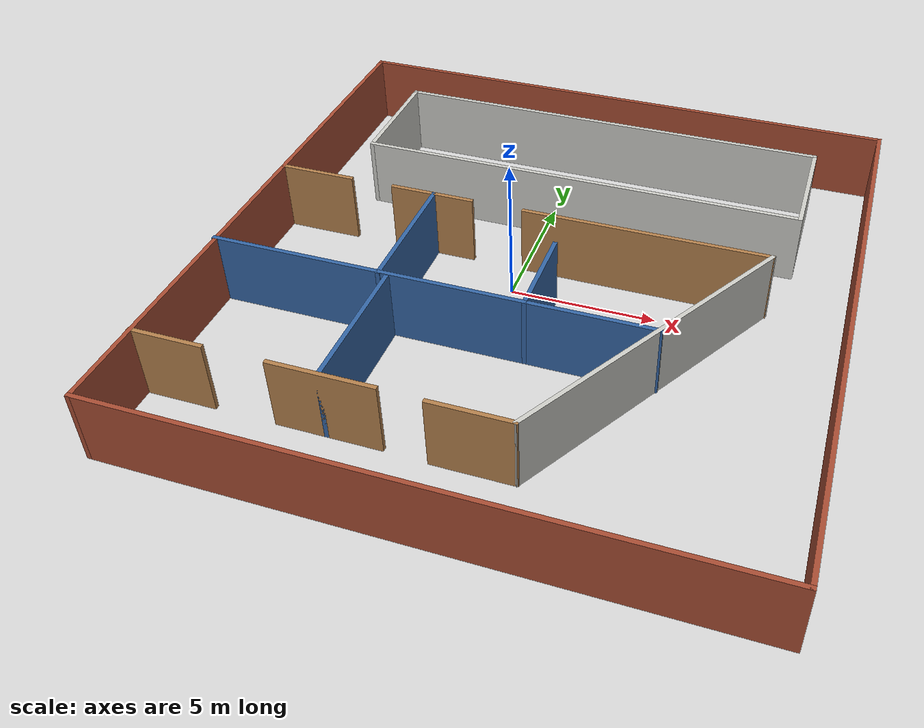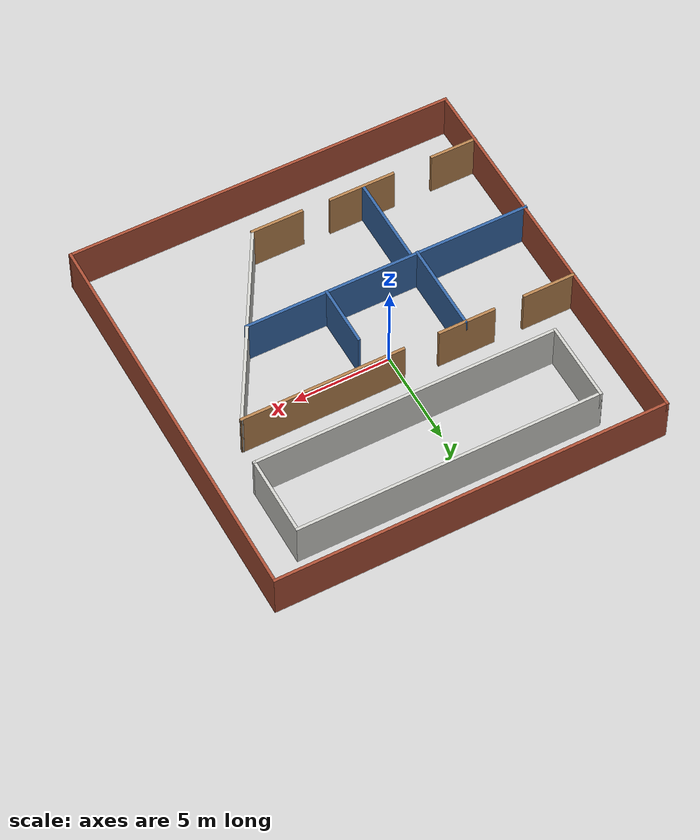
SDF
<?xml version='1.0'?>
<sdf version='1.6'>
  <model name='hostelM1'>
    <pose frame=''>0.983517 -0.567657 0 0 -0 0</pose>
    <link name='Wall_10'>
      <collision name='Wall_10_Collision'>
        <geometry>
          <box>
            <size>4.25 0.15 2.5</size>
          </box>
        </geometry>
        <pose frame=''>0 0 1.25 0 -0 0</pose>
      </collision>
      <visual name='Wall_10_Visual'>
        <pose frame=''>0 0 1.25 0 -0 0</pose>
        <geometry>
          <box>
            <size>4.25 0.15 2.5</size>
          </box>
        </geometry>
        <material>
          <script>
            <uri>file://media/materials/scripts/gazebo.material</uri>
            <name>Gazebo/CeilingTiled</name>
          </script>
          <ambient>1 1 1 1</ambient>
        </material>
        <meta>
          <layer>0</layer>
        </meta>
      </visual>
      <pose frame=''>7.95036 6.33647 0 0 -0 -1.5708</pose>
    </link>
    <link name='Wall_11'>
      <collision name='Wall_11_Collision'>
        <geometry>
          <box>
            <size>15.75 0.15 2.5</size>
          </box>
        </geometry>
        <pose frame=''>0 0 1.25 0 -0 0</pose>
      </collision>
      <visual name='Wall_11_Visual'>
        <pose frame=''>0 0 1.25 0 -0 0</pose>
        <geometry>
          <box>
            <size>15.75 0.15 2.5</size>
          </box>
        </geometry>
        <material>
          <script>
            <uri>file://media/materials/scripts/gazebo.material</uri>
            <name>Gazebo/CeilingTiled</name>
          </script>
          <ambient>1 1 1 1</ambient>
        </material>
        <meta>
          <layer>0</layer>
        </meta>
      </visual>
      <pose frame=''>0.15036 4.28647 0 0 -0 3.14159</pose>
    </link>
    <link name='Wall_12'>
      <collision name='Wall_12_Collision'>
        <geometry>
          <box>
            <size>4.25 0.15 2.5</size>
          </box>
        </geometry>
        <pose frame=''>0 0 1.25 0 -0 0</pose>
      </collision>
      <visual name='Wall_12_Visual'>
        <pose frame=''>0 0 1.25 0 -0 0</pose>
        <geometry>
          <box>
            <size>4.25 0.15 2.5</size>
          </box>
        </geometry>
        <material>
          <script>
            <uri>file://media/materials/scripts/gazebo.material</uri>
            <name>Gazebo/CeilingTiled</name>
          </script>
          <ambient>1 1 1 1</ambient>
        </material>
        <meta>
          <layer>0</layer>
        </meta>
      </visual>
      <pose frame=''>-7.64964 6.33647 0 0 -0 1.5708</pose>
    </link>
    <link name='Wall_14'>
      <collision name='Wall_14_Collision'>
        <geometry>
          <box>
            <size>2.75 0.15 2.5</size>
          </box>
        </geometry>
        <pose frame=''>0 0 1.25 0 -0 0</pose>
      </collision>
      <visual name='Wall_14_Visual'>
        <pose frame=''>0 0 1.25 0 -0 0</pose>
        <geometry>
          <box>
            <size>2.75 0.15 2.5</size>
          </box>
        </geometry>
        <material>
          <script>
            <uri>file://media/materials/scripts/gazebo.material</uri>
            <name>Gazebo/Wood</name>
          </script>
          <ambient>0.203922 0.396078 0.643137 1</ambient>
        </material>
        <meta>
          <layer>0</layer>
        </meta>
      </visual>
      <pose frame=''>-8.69606 1.91358 0 0 -0 0</pose>
    </link>
    <link name='Wall_17'>
      <collision name='Wall_17_Collision'>
        <geometry>
          <box>
            <size>3 0.15 2.5</size>
          </box>
        </geometry>
        <pose frame=''>0 0 1.25 0 -0 0</pose>
      </collision>
      <visual name='Wall_17_Visual'>
        <pose frame=''>0 0 1.25 0 -0 0</pose>
        <geometry>
          <box>
            <size>3 0.15 2.5</size>
          </box>
        </geometry>
        <material>
          <script>
            <uri>file://media/materials/scripts/gazebo.material</uri>
            <name>Gazebo/Wood</name>
          </script>
          <ambient>0.203922 0.396078 0.643137 1</ambient>
        </material>
        <meta>
          <layer>0</layer>
        </meta>
      </visual>
      <pose frame=''>-4.32323 1.91358 0 0 -0 0</pose>
    </link>
    <link name='Wall_20'>
      <collision name='Wall_20_Collision'>
        <geometry>
          <box>
            <size>8.5 0.15 2.5</size>
          </box>
        </geometry>
        <pose frame=''>0 0 1.25 0 -0 0</pose>
      </collision>
      <visual name='Wall_20_Visual'>
        <pose frame=''>0 0 1.25 0 -0 0</pose>
        <geometry>
          <box>
            <size>8.5 0.15 2.5</size>
          </box>
        </geometry>
        <material>
          <script>
            <uri>file://media/materials/scripts/gazebo.material</uri>
            <name>Gazebo/Wood</name>
          </script>
          <ambient>0.203922 0.396078 0.643137 1</ambient>
        </material>
        <meta>
          <layer>0</layer>
        </meta>
      </visual>
      <pose frame=''>3.20053 1.91358 0 0 -0 0</pose>
    </link>
    <link name='Wall_21'>
      <collision name='Wall_21_Collision'>
        <geometry>
          <box>
            <size>11 0.15 2.5</size>
          </box>
        </geometry>
        <pose frame=''>0 0 1.25 0 -0 0</pose>
      </collision>
      <visual name='Wall_21_Visual'>
        <pose frame=''>0 0 1.25 0 -0 0</pose>
        <geometry>
          <box>
            <size>11 0.15 2.5</size>
          </box>
        </geometry>
        <material>
          <script>
            <uri>file://media/materials/scripts/gazebo.material</uri>
            <name>Gazebo/CeilingTiled</name>
          </script>
          <ambient>1 1 1 1</ambient>
        </material>
        <meta>
          <layer>0</layer>
        </meta>
      </visual>
      <pose frame=''>4.66303 -2.78461 0 0 -0 -2.0944</pose>
    </link>
    <link name='Wall_22'>
      <collision name='Wall_22_Collision'>
        <geometry>
          <box>
            <size>2.75 0.15 2.5</size>
          </box>
        </geometry>
        <pose frame=''>0 0 1.25 0 -0 0</pose>
      </collision>
      <visual name='Wall_22_Visual'>
        <pose frame=''>0 0 1.25 0 -0 0</pose>
        <geometry>
          <box>
            <size>2.75 0.15 2.5</size>
          </box>
        </geometry>
        <material>
          <script>
            <uri>file://media/materials/scripts/gazebo.material</uri>
            <name>Gazebo/Wood</name>
          </script>
          <ambient>1 1 1 1</ambient>
        </material>
        <meta>
          <layer>0</layer>
        </meta>
      </visual>
      <pose frame=''>0.650531 -7.4828 0 0 -0 3.14159</pose>
    </link>
    <link name='Wall_24'>
      <collision name='Wall_24_Collision'>
        <geometry>
          <box>
            <size>3.5 0.15 2.5</size>
          </box>
        </geometry>
        <pose frame=''>0 0 1.25 0 -0 0</pose>
      </collision>
      <visual name='Wall_24_Visual'>
        <pose frame=''>0 0 1.25 0 -0 0</pose>
        <geometry>
          <box>
            <size>3.5 0.15 2.5</size>
          </box>
        </geometry>
        <material>
          <script>
            <uri>file://media/materials/scripts/gazebo.material</uri>
            <name>Gazebo/Wood</name>
          </script>
          <ambient>1 1 1 1</ambient>
        </material>
        <meta>
          <layer>0</layer>
        </meta>
      </visual>
      <pose frame=''>-3.86314 -7.43166 0 0 -0 3.14159</pose>
    </link>
    <link name='Wall_26'>
      <collision name='Wall_26_Collision'>
        <geometry>
          <box>
            <size>2.5 0.15 2.5</size>
          </box>
        </geometry>
        <pose frame=''>0 0 1.25 0 -0 0</pose>
      </collision>
      <visual name='Wall_26_Visual'>
        <pose frame=''>0 0 1.25 0 -0 0</pose>
        <geometry>
          <box>
            <size>2.5 0.15 2.5</size>
          </box>
        </geometry>
        <material>
          <script>
            <uri>file://media/materials/scripts/gazebo.material</uri>
            <name>Gazebo/Wood</name>
          </script>
          <ambient>1 1 1 1</ambient>
        </material>
        <meta>
          <layer>0</layer>
        </meta>
      </visual>
      <pose frame=''>-8.8651 -7.43166 0 0 -0 3.14159</pose>
    </link>
    <link name='Wall_28'>
      <collision name='Wall_28_Collision'>
        <geometry>
          <box>
            <size>15 0.15 2.5</size>
          </box>
        </geometry>
        <pose frame=''>0 0 1.25 0 -0 0</pose>
      </collision>
      <visual name='Wall_28_Visual'>
        <pose frame=''>0 0 1.25 0 -0 0</pose>
        <geometry>
          <box>
            <size>15 0.15 2.5</size>
          </box>
        </geometry>
        <material>
          <script>
            <uri>file://media/materials/scripts/gazebo.material</uri>
            <name>Gazebo/Grey</name>
          </script>
          <ambient>0.203922 0.396078 0.643137 1</ambient>
        </material>
        <meta>
          <layer>0</layer>
        </meta>
      </visual>
      <pose frame=''>-2.65197 -2.6579 0 0 -0 0</pose>
    </link>
    <link name='Wall_32'>
      <collision name='Wall_32_Collision'>
        <geometry>
          <box>
            <size>4.75 0.15 2.5</size>
          </box>
        </geometry>
        <pose frame=''>0 0 1.25 0 -0 0</pose>
      </collision>
      <visual name='Wall_32_Visual'>
        <pose frame=''>0 0 1.25 0 -0 0</pose>
        <geometry>
          <box>
            <size>4.75 0.15 2.5</size>
          </box>
        </geometry>
        <material>
          <script>
            <uri>file://media/materials/scripts/gazebo.material</uri>
            <name>Gazebo/Grey</name>
          </script>
          <ambient>0.203922 0.396078 0.643137 1</ambient>
        </material>
        <meta>
          <layer>0</layer>
        </meta>
      </visual>
      <pose frame=''>-4.25137 -0.386422 0 0 -0 -1.5708</pose>
    </link>
    <link name='Wall_34'>
      <collision name='Wall_34_Collision'>
        <geometry>
          <box>
            <size>4.75 0.15 2.5</size>
          </box>
        </geometry>
        <pose frame=''>0 0 1.25 0 -0 0</pose>
      </collision>
      <visual name='Wall_34_Visual'>
        <pose frame=''>0 0 1.25 0 -0 0</pose>
        <geometry>
          <box>
            <size>4.75 0.15 2.5</size>
          </box>
        </geometry>
        <material>
          <script>
            <uri>file://media/materials/scripts/gazebo.material</uri>
            <name>Gazebo/Grey</name>
          </script>
          <ambient>0.203922 0.396078 0.643137 1</ambient>
        </material>
        <meta>
          <layer>0</layer>
        </meta>
      </visual>
      <pose frame=''>-3.92773 -5.13166 0 0 -0 1.5708</pose>
    </link>
    <link name='Wall_36'>
      <collision name='Wall_36_Collision'>
        <geometry>
          <box>
            <size>3.25 0.15 2.5</size>
          </box>
        </geometry>
        <pose frame=''>0 0 1.25 0 -0 0</pose>
      </collision>
      <visual name='Wall_36_Visual'>
        <pose frame=''>0 0 1.25 0 -0 0</pose>
        <geometry>
          <box>
            <size>3.25 0.15 2.5</size>
          </box>
        </geometry>
        <material>
          <script>
            <uri>file://media/materials/scripts/gazebo.material</uri>
            <name>Gazebo/Grey</name>
          </script>
          <ambient>0.203922 0.396078 0.643137 1</ambient>
        </material>
        <meta>
          <layer>0</layer>
        </meta>
      </visual>
      <pose frame=''>0.562842 -1.1079 0 0 -0 1.5708</pose>
    </link>
    <link name='Wall_4'>
      <collision name='Wall_4_Collision'>
        <geometry>
          <box>
            <size>20.25 0.15 2.5</size>
          </box>
        </geometry>
        <pose frame=''>0 0 1.25 0 -0 0</pose>
      </collision>
      <visual name='Wall_4_Visual'>
        <pose frame=''>0 0 1.25 0 -0 0</pose>
        <geometry>
          <box>
            <size>20.25 0.15 2.5</size>
          </box>
        </geometry>
        <material>
          <script>
            <uri>file://media/materials/scripts/gazebo.material</uri>
            <name>Gazebo/Bricks</name>
          </script>
          <ambient>1 1 1 1</ambient>
        </material>
        <meta>
          <layer>0</layer>
        </meta>
      </visual>
      <pose frame=''>0.026973 10.3 0 0 -0 0</pose>
    </link>
    <link name='Wall_5'>
      <collision name='Wall_5_Collision'>
        <geometry>
          <box>
            <size>20.75 0.15 2.5</size>
          </box>
        </geometry>
        <pose frame=''>0 0 1.25 0 -0 0</pose>
      </collision>
      <visual name='Wall_5_Visual'>
        <pose frame=''>0 0 1.25 0 -0 0</pose>
        <geometry>
          <box>
            <size>20.75 0.15 2.5</size>
          </box>
        </geometry>
        <material>
          <script>
            <uri>file://media/materials/scripts/gazebo.material</uri>
            <name>Gazebo/Bricks</name>
          </script>
          <ambient>1 1 1 1</ambient>
        </material>
        <meta>
          <layer>0</layer>
        </meta>
      </visual>
      <pose frame=''>10.077 0 0 0 -0 -1.5708</pose>
    </link>
    <link name='Wall_6'>
      <collision name='Wall_6_Collision'>
        <geometry>
          <box>
            <size>20.25 0.15 2.5</size>
          </box>
        </geometry>
        <pose frame=''>0 0 1.25 0 -0 0</pose>
      </collision>
      <visual name='Wall_6_Visual'>
        <pose frame=''>0 0 1.25 0 -0 0</pose>
        <geometry>
          <box>
            <size>20.25 0.15 2.5</size>
          </box>
        </geometry>
        <material>
          <script>
            <uri>file://media/materials/scripts/gazebo.material</uri>
            <name>Gazebo/Bricks</name>
          </script>
          <ambient>1 1 1 1</ambient>
        </material>
        <meta>
          <layer>0</layer>
        </meta>
      </visual>
      <pose frame=''>0.026973 -10.3 0 0 -0 3.14159</pose>
    </link>
    <link name='Wall_7'>
      <collision name='Wall_7_Collision'>
        <geometry>
          <box>
            <size>20.75 0.15 2.5</size>
          </box>
        </geometry>
        <pose frame=''>0 0 1.25 0 -0 0</pose>
      </collision>
      <visual name='Wall_7_Visual'>
        <pose frame=''>0 0 1.25 0 -0 0</pose>
        <geometry>
          <box>
            <size>20.75 0.15 2.5</size>
          </box>
        </geometry>
        <material>
          <script>
            <uri>file://media/materials/scripts/gazebo.material</uri>
            <name>Gazebo/Bricks</name>
          </script>
          <ambient>1 1 1 1</ambient>
        </material>
        <meta>
          <layer>0</layer>
        </meta>
      </visual>
      <pose frame=''>-10.023 0 0 0 -0 1.5708</pose>
    </link>
    <link name='Wall_9'>
      <collision name='Wall_9_Collision'>
        <geometry>
          <box>
            <size>15.75 0.15 2.5</size>
          </box>
        </geometry>
        <pose frame=''>0 0 1.25 0 -0 0</pose>
      </collision>
      <visual name='Wall_9_Visual'>
        <pose frame=''>0 0 1.25 0 -0 0</pose>
        <geometry>
          <box>
            <size>15.75 0.15 2.5</size>
          </box>
        </geometry>
        <material>
          <script>
            <uri>file://media/materials/scripts/gazebo.material</uri>
            <name>Gazebo/CeilingTiled</name>
          </script>
          <ambient>1 1 1 1</ambient>
        </material>
        <meta>
          <layer>0</layer>
        </meta>
      </visual>
      <pose frame=''>0.15036 8.38647 0 0 -0 0</pose>
    </link>
    <static>1</static>
  </model>
</sdf>
